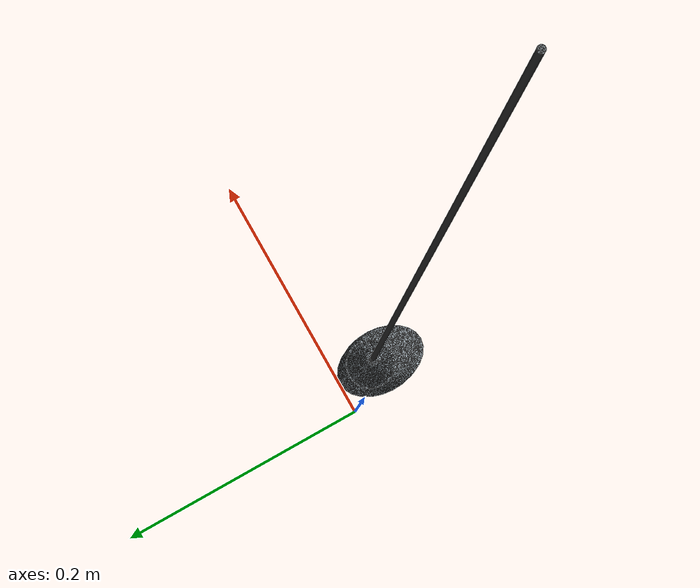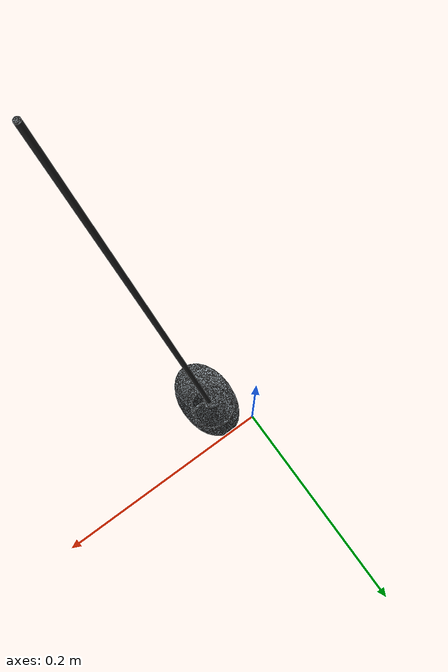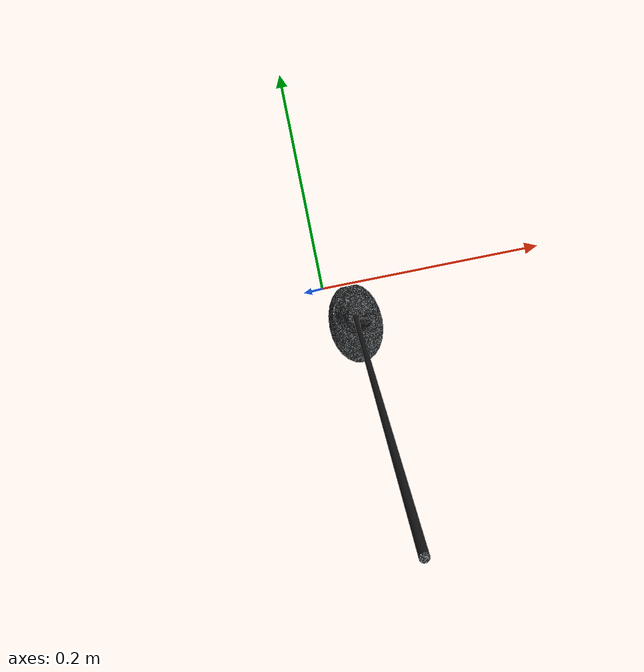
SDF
<?xml version="1.0" ?>
<sdf version="1.6">
  <model name="receiver">

    <link name="router">
      <pose>0 0 0.0 0 0 0</pose>
      <gravity>0</gravity>
    </link>

    <link name="antenna_1">
      <gravity>false</gravity>
      <pose>0.5 0.5 0.5 0 0 0</pose>
      <inertial>
        <pose>-0.5 -0.5 -0.5 1.5708 0 0</pose>
        <mass>0.1</mass>
      </inertial>
      <visual name="visual">
        <pose>-0.5 -0.5 -0.5 1.5708 0 0</pose>
		<geometry>
		  <mesh>
			<uri>model://wireless/meshes/antenna.dae</uri>
		  </mesh>
		</geometry>
      </visual>
      <sensor name="antenna_1" type="wireless_receiver">
          <always_on>1</always_on>
          <update_rate>100</update_rate>
          <visualize>false</visualize>
          <transceiver>
            <min_frequency>2412.0</min_frequency>
            <max_frequency>2484.0</max_frequency>
            <power>14.6</power>
            <gain>7</gain>
            <sensitivity>-90.0</sensitivity>
          </transceiver>
        </sensor>
    </link>

    <joint name='antenna_1_joint' type='fixed'>
      <parent>router</parent>
      <child>antenna_1</child>
      <pose>0.05 0.05 0.05 1.5708 0 0</pose>
      <physics>
        <ode>
          <implicit_spring_damper>1</implicit_spring_damper>
        </ode>
      </physics>
    </joint>

  </model>
</sdf>
